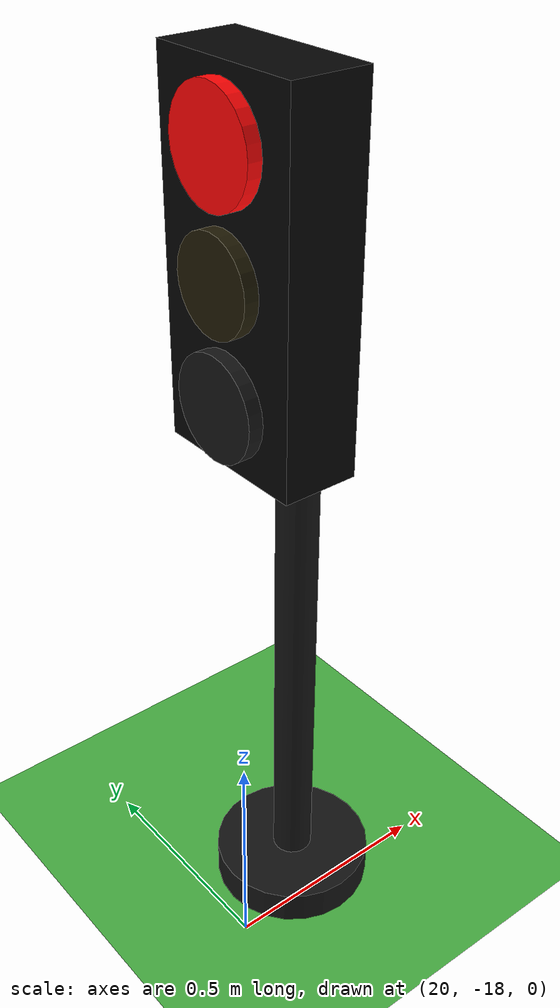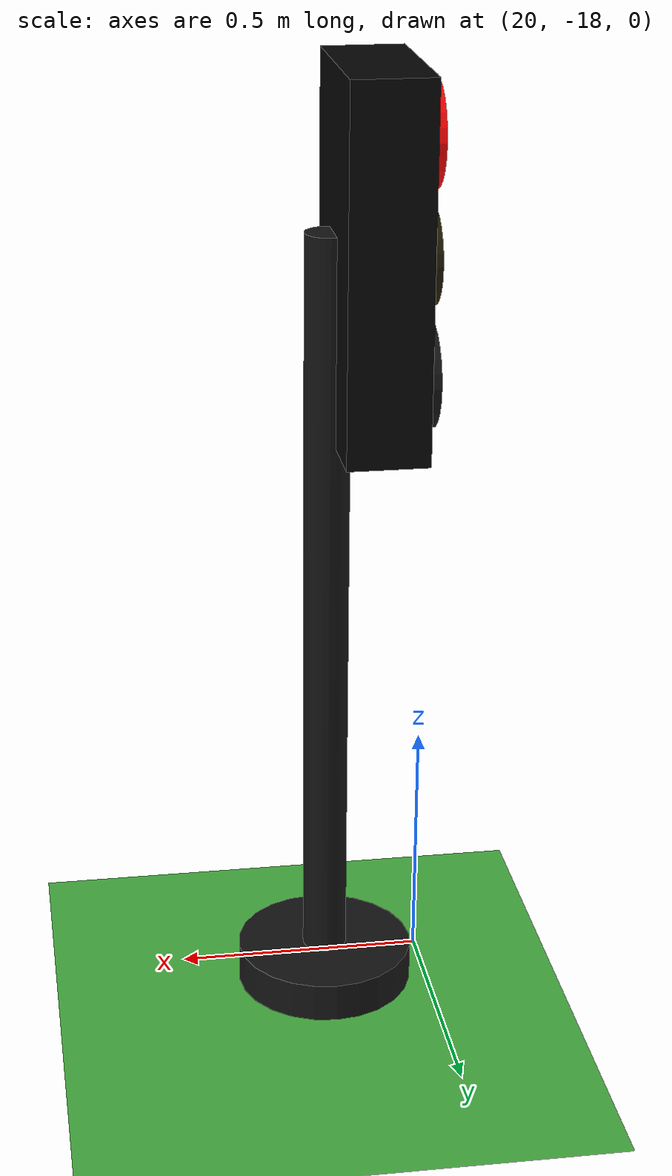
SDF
<sdf version="1.10">
 <world name="city_second">
  <model name="ground_plane">
   <static>true</static>
   <link name="link">
    <collision name="collision">
     <geometry><plane><normal>0 0 1</normal><size>300 300</size></plane></geometry>
    </collision>
    <visual name="visual">
     <geometry><plane><normal>0 0 1</normal><size>300 300</size></plane></geometry>
     <material>
      <ambient>0.280000001 0.689999998 0.25999999 1</ambient>
      <diffuse>0.280000001 0.689999998 0.25999999 1</diffuse>
      <specular>0.0299999993 0.0299999993 0.0299999993 1</specular>
     </material>
    </visual>
    <inertial>
     <mass>1</mass>
     <inertia><ixx>1</ixx><ixy>0</ixy><ixz>0</ixz><iyy>1</iyy><iyz>0</iyz><izz>1</izz></inertia>
    </inertial>
   </link>
  </model>
  <model name="simple_traffic_light_red_west_3">
   <static>true</static>
   <pose>20.210819927549061 -17.910705115010835 -1.3877787807814457e-17 0 0 1.5707999672671711</pose>
   <link name="base">
    <pose>0 0 0.040000000000000001 0 0 0</pose>
    <collision name="collision">
     <geometry>
      <cylinder><radius>0.17999999999999999</radius><length>0.080000000000000002</length></cylinder>
     </geometry>
    </collision>
    <visual name="visual">
     <geometry>
      <cylinder><radius>0.17999999999999999</radius><length>0.080000000000000002</length></cylinder>
     </geometry>
     <material>
      <ambient>0.0799999982 0.0799999982 0.0799999982 1</ambient>
      <diffuse>0.0799999982 0.0799999982 0.0799999982 1</diffuse>
      <specular>0.150000006 0.150000006 0.150000006 1</specular>
      <emissive>0 0 0 1</emissive>
     </material>
    </visual>
    <inertial>
     <mass>1</mass>
     <inertia><ixx>1</ixx><ixy>0</ixy><ixz>0</ixz><iyy>1</iyy><iyz>0</iyz><izz>1</izz></inertia>
    </inertial>
   </link>
   <link name="pole">
    <pose>-3.5527136788005009e-15 0 0.80000000000000004 0 0 3.3306690738754696e-16</pose>
    <collision name="collision">
     <geometry>
      <cylinder><radius>0.044999999999999998</radius><length>1.6000000000000001</length></cylinder>
     </geometry>
    </collision>
    <visual name="visual">
     <geometry>
      <cylinder><radius>0.044999999999999998</radius><length>1.6000000000000001</length></cylinder>
     </geometry>
     <material>
      <ambient>0.0799999982 0.0799999982 0.0799999982 1</ambient>
      <diffuse>0.0799999982 0.0799999982 0.0799999982 1</diffuse>
      <specular>0.150000006 0.150000006 0.150000006 1</specular>
      <emissive>0 0 0 1</emissive>
     </material>
    </visual>
    <inertial>
     <mass>1</mass>
     <inertia><ixx>1</ixx><ixy>0</ixy><ixz>0</ixz><iyy>1</iyy><iyz>0</iyz><izz>1</izz></inertia>
    </inertial>
   </link>
   <link name="signal_box">
    <pose>-7.1054273576010019e-15 0.089999999999996305 1.5500000000000003 0 0 3.3306690738754696e-16</pose>
    <collision name="collision">
     <geometry><box><size>0.34000000000000002 0.16 0.71999999999999997</size></box></geometry>
    </collision>
    <visual name="visual">
     <geometry><box><size>0.34000000000000002 0.16 0.71999999999999997</size></box></geometry>
     <material>
      <ambient>0.0199999996 0.0199999996 0.0199999996 1</ambient>
      <diffuse>0.0199999996 0.0199999996 0.0199999996 1</diffuse>
      <specular>0.150000006 0.150000006 0.150000006 1</specular>
      <emissive>0 0 0 1</emissive>
     </material>
    </visual>
    <inertial>
     <mass>1</mass>
     <inertia><ixx>1</ixx><ixy>0</ixy><ixz>0</ixz><iyy>1</iyy><iyz>0</iyz><izz>1</izz></inertia>
    </inertial>
   </link>
   <link name="red_lens">
    <pose>-3.5527136788005009e-15 0.18100000000000094 1.78 1.5707963267999998 -7.8504622930783579e-17 -1.3345785898814093e-15</pose>
    <collision name="collision">
     <geometry><cylinder><radius>0.105</radius><length>0.035000000000000003</length></cylinder></geometry>
    </collision>
    <visual name="visual">
     <geometry><cylinder><radius>0.105</radius><length>0.035000000000000003</length></cylinder></geometry>
     <material>
      <ambient>1 0.0199999996 0.0199999996 1</ambient>
      <diffuse>1 0.0199999996 0.0199999996 1</diffuse>
      <specular>0.150000006 0.150000006 0.150000006 1</specular>
      <emissive>1 0.0199999996 0.0199999996 1</emissive>
     </material>
    </visual>
    <inertial>
     <mass>1</mass>
     <inertia><ixx>1</ixx><ixy>0</ixy><ixz>0</ixz><iyy>1</iyy><iyz>0</iyz><izz>1</izz></inertia>
    </inertial>
   </link>
   <link name="yellow_lens">
    <pose>-7.1054273576010019e-15 0.18200000000000216 1.5500000000000003 1.5707963267999998 -7.8504622930783579e-17 -1.3345785898814093e-15</pose>
    <collision name="collision">
     <geometry>
      <cylinder><radius>0.095000000000000001</radius><length>0.035000000000000003</length></cylinder>
     </geometry>
    </collision>
    <visual name="visual">
     <geometry>
      <cylinder><radius>0.095000000000000001</radius><length>0.035000000000000003</length></cylinder>
     </geometry>
     <material>
      <ambient>0.119999997 0.100000001 0.0199999996 1</ambient>
      <diffuse>0.119999997 0.100000001 0.0199999996 1</diffuse>
      <specular>0.150000006 0.150000006 0.150000006 1</specular>
      <emissive>0 0 0 1</emissive>
     </material>
    </visual>
    <inertial>
     <mass>1</mass>
     <inertia><ixx>1</ixx><ixy>0</ixy><ixz>0</ixz><iyy>1</iyy><iyz>0</iyz><izz>1</izz></inertia>
    </inertial>
   </link>
   <link name="green_lens">
    <pose>0 0.18300000000000338 1.3199999999999998 1.5707963267999998 -7.8504622930783579e-17 -1.3345785898814093e-15</pose>
    <collision name="collision">
     <geometry><cylinder><radius>0.105</radius><length>0.035000000000000003</length></cylinder></geometry>
    </collision>
    <visual name="visual">
     <geometry><cylinder><radius>0.105</radius><length>0.035000000000000003</length></cylinder></geometry>
     <material>
      <ambient>0.0799999982 0.0799999982 0.0799999982 1</ambient>
      <diffuse>0.0799999982 0.0799999982 0.0799999982 1</diffuse>
      <specular>0.150000006 0.150000006 0.150000006 1</specular>
      <emissive>0 0 0 1</emissive>
     </material>
    </visual>
    <inertial>
     <mass>1</mass>
     <inertia><ixx>1</ixx><ixy>0</ixy><ixz>0</ixz><iyy>1</iyy><iyz>0</iyz><izz>1</izz></inertia>
    </inertial>
   </link>
  </model>
 </world>
</sdf>
